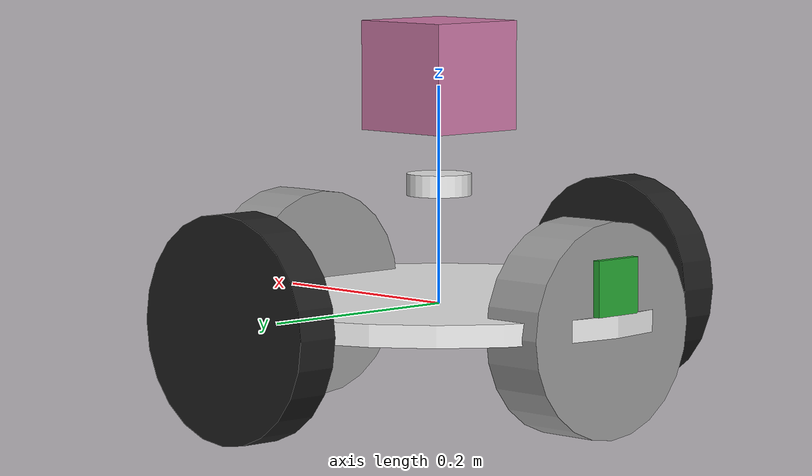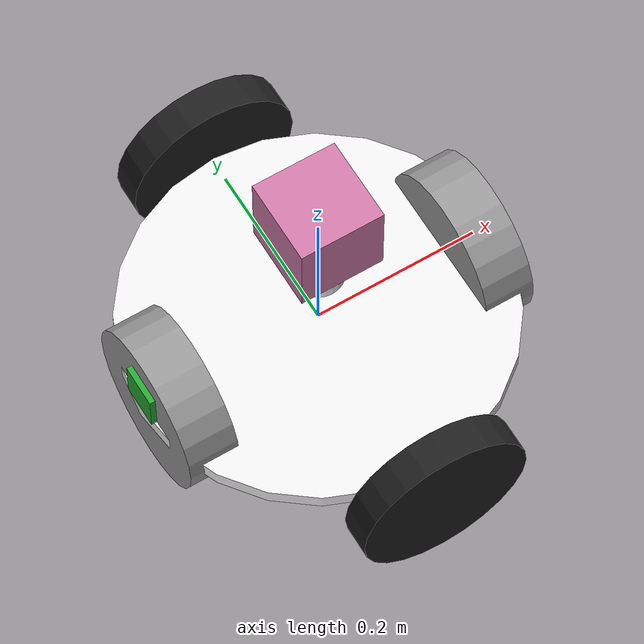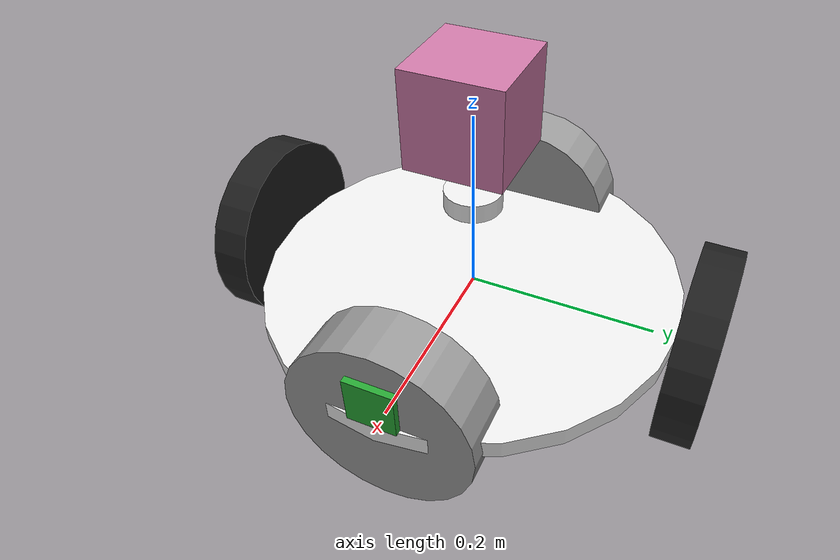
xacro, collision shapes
<?xml version="1.0"?>

<robot xmlns:xacro="http://www.ros.org/wiki/xacro" name="puc1_robot">

  <xacro:include filename="$(find puc1_description)/urdf/puc1_robot.gazebo" />

  <xacro:property name="cameraSize" value="0.05"/>
  <xacro:property name="cameraMass" value="0.1"/>

  <!-- Base Robotic -->
  <link name="base_link">
    <inertial>
      <mass value="2" />
      <origin xyz="0 0 0.1" />
      <inertia ixx="0.01" ixy="0.0" ixz="0.0"
        iyy="0.01" iyz="0.0" izz="0.5" />
    </inertial>

      <visual>
        <origin xyz="0 0 0" rpy="0 0 0" />
        <geometry>
          <cylinder length="0.02" radius="0.2245"/>
        </geometry>
        <material name ="White" />
      </visual>

      <collision>
        <origin xyz="0 0 0" rpy="0 0 0" />
        <geometry>
          <cylinder length="0.02" radius="0.2245"/>
        </geometry>
      </collision>
  </link>

  <!-- Roda Castor Frontal -->
  <link name="front_caster">
    <inertial>
      <mass value="0.001" />
      <origin xyz="0 0 0" />
      <inertia ixx="0.0001" ixy="0.0" ixz="0.0"
          iyy="0.0001" iyz="0.0"
          izz="0.0001" />
    </inertial>

      <visual>
        <origin xyz="0 0 0" rpy="-1.5707 0 1.5707" />
        <geometry>
          <mesh filename="package://puc1_description/meshes/castor.dae"/>
        </geometry>
        <material name ="light_grey">
          <color rgba="0.6 0.6 0.6 1"/>
        </material>
      </visual>

      <collision>
        <origin xyz="0 0 0" rpy="-1.5707 0 1.5707" />
        <geometry>
          <cylinder length="0.0605" radius="0.097"/>
        </geometry>
      </collision>
  </link>

  <joint name="front_caster_joint" type="fixed">
    <origin xyz="0.18745 0 -0.00475" rpy="0 0 0" />
    <parent link="base_link" />
    <child link="front_caster" />
  </joint>

  <!-- Roda Castor Traseira -->
  <link name="rear_caster">
    <inertial>
      <mass value="0.001" />
      <origin xyz="0 0 0" />
      <inertia ixx="0.0001" ixy="0.0" ixz="0.0"
        iyy="0.0001" iyz="0.0"
        izz="0.0001" />
      </inertial>

      <visual>
        <origin xyz="0 0 0" rpy="-1.5707 0 1.5707" />
        <geometry>
          <mesh filename="package://puc1_description/meshes/castor.dae"/>
        </geometry>
        <material name ="light_grey">
          <color rgba="0.6 0.6 0.6 1"/>
        </material>
      </visual>

      <collision>
        <origin xyz="0 0 0" rpy="-1.5707 0 1.5707" />
        <geometry>
          <cylinder length="0.0605" radius="0.097"/>
        </geometry>
      </collision>
  </link>

  <joint name="rear_caster_joint" type="fixed">
    <origin xyz="-0.18745 0 -0.00475" rpy="0 0 0" />
    <parent link="base_link" />
    <child link="rear_caster" />
  </joint>

  <!-- Roda Direita -->
  <link name="right_wheel_link">
    <inertial>
      <origin xyz="0 0 0" rpy="0 1.5707 1.5707"/>
      <mass value="0.01" />
      <inertia ixx="0.001" ixy="0.0" ixz="0.0"
        iyy="0.001" iyz="0.0" izz="0.001" />
      </inertial>

      <visual>
        <origin xyz="0 0 0" rpy="0 1.5707 1.5707" />
        <geometry>
          <cylinder radius="0.10182" length = "0.04"/>
        </geometry>
        <material name ="black" />
      </visual>

      <collision>
        <origin xyz="0 0 0" rpy="0 1.5707 1.5707" />
        <geometry>
          <cylinder radius="0.10182" length = "0.04"/>
        </geometry>
      </collision>
  </link>

  <joint name="right_wheel_joint" type="continuous">
    <origin xyz="0 -0.2445 0" rpy="0 0 0"/>
    <parent link="base_link"/>
    <child link="right_wheel_link"/>
    <axis xyz="0 1 0"/>
  </joint>

  <!-- Roda Esquerda -->
  <link name="left_wheel_link">
    <inertial>
      <origin xyz="0 0 0" rpy="0 1.5707 1.5707"/>
      <mass value="0.01" />
      <inertia ixx="0.001" ixy="0.0" ixz="0.0"
        iyy="0.001" iyz="0.0" izz="0.001" />
      </inertial>

      <visual>
        <origin xyz="0 0 0" rpy="0 1.5707 1.5707" />
        <geometry>
          <cylinder radius="0.10182" length = "0.04"/>
        </geometry>
        <material name ="black" />
      </visual>

      <collision>
        <origin xyz="0 0 0" rpy="0 1.5707 1.5707" />
        <geometry>
          <cylinder radius="0.10182" length = "0.04"/>
        </geometry>
      </collision>
  </link>

  <joint name="left_wheel_joint" type="continuous">
    <origin xyz="0 0.2445 0" rpy="0 0 0"/>
    <parent link="base_link"/>
    <child link="left_wheel_link"/>
    <axis xyz="0 1 0"/>
  </joint>

  <!-- Torre do Rplidar Laser -->
  <link name="laser_tower">
    <inertial>
      <mass value="0.001" />
      <origin xyz="0 0 0" />
      <inertia ixx="0.0001" ixy="0.0" ixz="0.0"
        iyy="0.0001" iyz="0.0"
        izz="0.0001" />
    </inertial>

      <visual>
        <origin xyz="0 0 0" rpy="0 0 0" />
        <geometry>
          <cylinder length="0.2" radius="0.03"/>
        </geometry>
        <material name ="White" />
      </visual>

      <collision>
        <origin xyz="0 0 0" rpy="0 0 0" />
        <geometry>
          <cylinder length="0.02" radius="0.03"/>
        </geometry>
      </collision>
  </link>

  <joint name="laser_tower_joint" type="fixed">
    <origin xyz="0 0 0.11" rpy="0 0 0" />
    <parent link="base_link" />
    <child link="laser_tower" />
  </joint>

  <!-- Rplidar Laser -->
  <link name="base_laser">
    <collision>
      <origin xyz="0 0 0" rpy="0 0 0"/>
      <geometry>
        <box size="0.1 0.1 0.1"/>
      </geometry>
    </collision>

    <visual>
      <origin xyz="0 0 0" rpy="0 0 0"/>
      <geometry>
        <mesh filename="package://puc1_description/meshes/rplidar.stl" scale="0.01 0.01 0.01" />
      </geometry>
    </visual>

    <inertial>
      <mass value="1e-5" />
      <origin xyz="0 0 0" rpy="0 0 0"/>
      <inertia ixx="1e-6" ixy="0" ixz="0" iyy="1e-6" iyz="0" izz="1e-6" />
    </inertial>
  </link>

  <joint name="laser_joint" type="fixed">
    <axis xyz="0 1 0" />
    <origin xyz=".0 0 0.1" rpy="0 0 0"/>
    <parent link="laser_tower"/>
    <child link="base_laser"/>
  </joint>

  <!-- Camera1 -->
  <link name="camera1">
    <collision>
      <origin xyz="0 0 0" rpy="0 0 0"/>
      <geometry>
        <box size="${cameraSize} ${cameraSize} ${cameraSize}"/>
      </geometry>
    </collision>

    <visual>
      <origin xyz="0 0 0" rpy="0 0 0"/>
      <geometry>
        <box size="${cameraSize} ${cameraSize} ${cameraSize}"/>
      </geometry>
    </visual>

    <inertial>
      <mass value="${cameraMass}" />
      <origin xyz="0 0 0" rpy="0 0 0"/>
      <box_inertia m="${cameraMass}" x="${cameraSize}" y="${cameraSize}" z="${cameraSize}" />
      <inertia ixx="1e-6" ixy="0" ixz="0" iyy="1e-6" iyz="0" izz="1e-6" />
    </inertial>
  </link>

  <joint name="camera1_joint" type="fixed">
    <axis xyz="0 1 0" />
    <origin xyz=".1995 0 0.035" rpy="0 0 0"/>
    <parent link="base_link"/>
    <child link="camera1"/>
  </joint>

  <!-- Camera2 -->
  <link name="camera2">
    <collision>
      <origin xyz="0 0 0" rpy="0 0 0"/>
      <geometry>
        <box size="${cameraSize} ${cameraSize} ${cameraSize}"/>
      </geometry>
    </collision>

    <visual>
      <origin xyz="0 0 0" rpy="0 0 0"/>
      <geometry>
        <box size="${cameraSize} ${cameraSize} ${cameraSize}"/>
      </geometry>
    </visual>

    <inertial>
      <mass value="${cameraMass}" />
      <origin xyz="0 0 0" rpy="0 0 0"/>
      <box_inertia m="${cameraMass}" x="${cameraSize}" y="${cameraSize}" z="${cameraSize}" />
      <inertia ixx="1e-6" ixy="0" ixz="0" iyy="1e-6" iyz="0" izz="1e-6" />
    </inertial>
  </link>

  <joint name="camera2_joint" type="fixed">
    <axis xyz="0 1 0" />
    <origin xyz="-0.1995 0 0.035" rpy="0 0 3.14159265"/>
    <parent link="base_link"/>
    <child link="camera2"/>
  </joint>

</robot>
